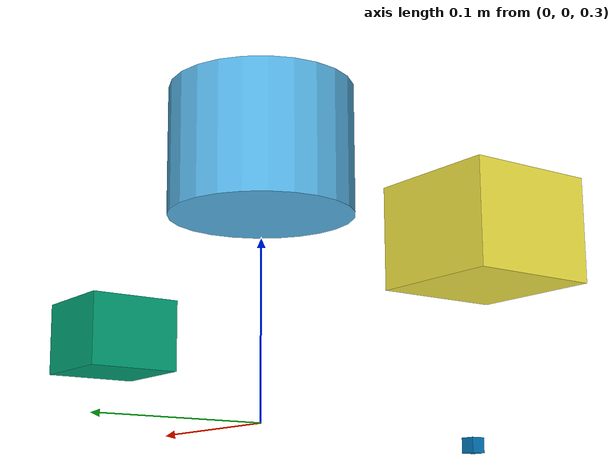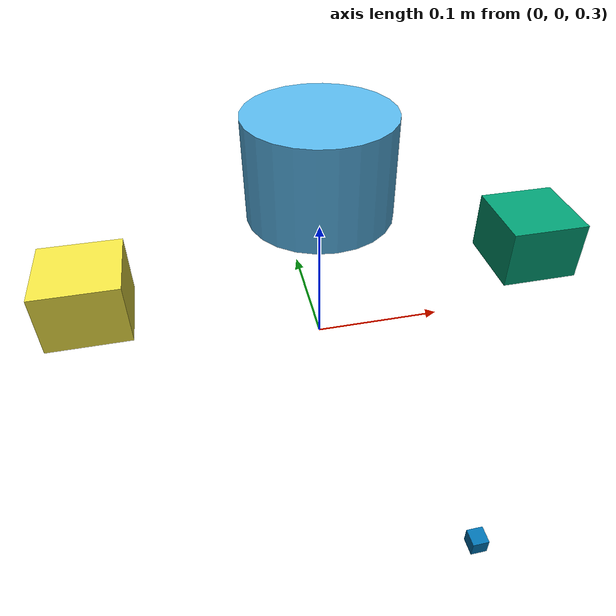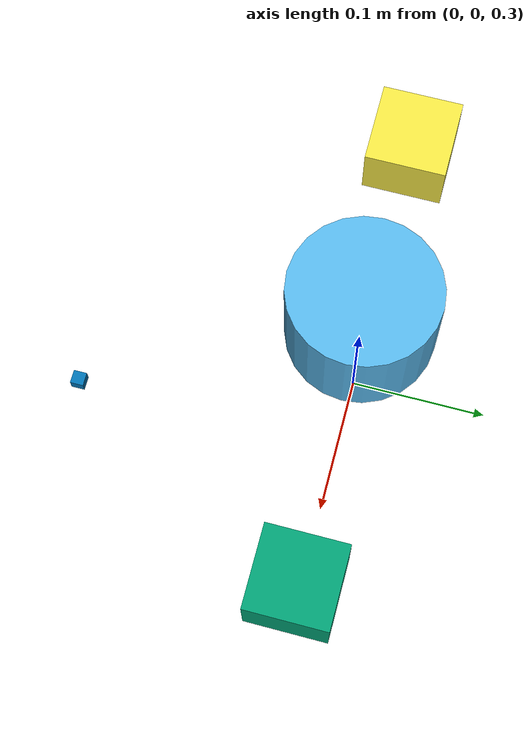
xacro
<?xml version="1.0"?>
<robot name="kait_robot" xmlns:xacro="http://ros.org/wiki/xacro">
<!-- base_link -->
	<link name="base_link"/>

<!-- Sensor -->
	<link name="laserscan_velodyne">
		<visual>
			<geometry>
				<cylinder radius="0.05165" length="0.0727"/>
			</geometry>
			<origin xyz="0 0 -0.00135" rpy="0 0 0"/>
		</visual>
	</link>

	<joint name="velodyne_joint" type="fixed">
		<parent link="base_link"/>
		<child link="laserscan_velodyne"/>
		<origin xyz="0 0 0.4505" rpy="0 ${radians(0)} 0"/>
	</joint>

	<link name="ethertop_front">
		<visual>
			<geometry>
				<box size="0.06 0.06 0.046"/>
			</geometry>
			<origin xyz="0 0 0.009" rpy="0 0 0"/>
		</visual>
	</link>

	<link name="ethertop_rear">
		<visual>
			<geometry>
				<box size="0.06 0.06 0.046"/>
			</geometry>
			<origin xyz="0 0 0.009" rpy="0 0 0"/>
		</visual>
	</link>

	<joint name="ethertop_front_joint" type="fixed">
		<parent link="base_link"/>
		<child link="ethertop_front"/>
		<origin xyz="0.170 0 0.3591" rpy="0 0 0"/>
	</joint>

	<joint name="ethertop_rear_joint" type="fixed">
		<parent link="base_link"/>
		<child link="ethertop_rear"/>
		<origin xyz="-0.170 0 0.3591" rpy="0 0 ${radians(180)}"/>
	</joint>

	<link name="imu_link">
		<visual>
			<geometry>
				<box size="0.01 0.01 0.01"/>
			</geometry>
		</visual>
	</link>

	<joint name="bno055_1_joint" type="fixed">
		<parent link="base_link"/>
		<child link="imu_link"/>
		<origin xyz="0.05 -0.2 0.3" rpy="${radians(180)} 0 0"/>
		<!--origin xyz="0.05 -0.2 0.3" rpy="0 0 0"/-->
	</joint>

</robot>
